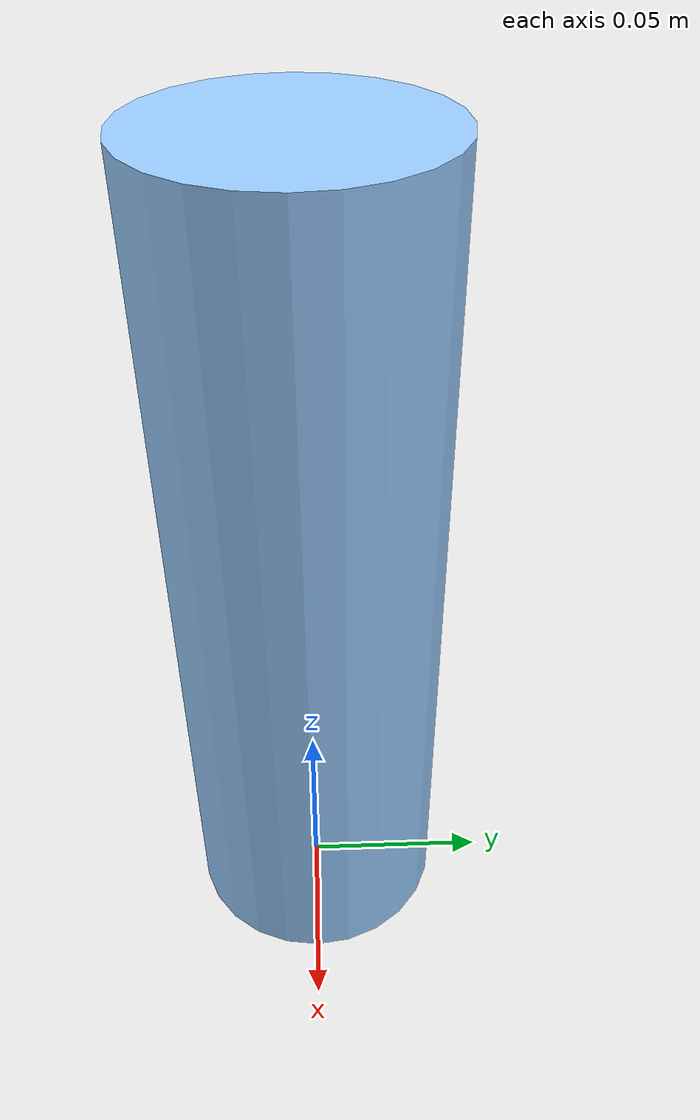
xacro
<?xml version="1.0"?>
<robot name="bottle" xmlns:xacro="http://www.ros.org/wiki/xacro">

  <!-- Parameters -->
  <xacro:property name="bottle_height" value="0.22"/>   <!-- meters -->
  <xacro:property name="bottle_radius" value="0.035"/>  <!-- meters -->
  <xacro:property name="bottle_mass" value="0.5"/>      <!-- kg -->

  <link name="bottle_link">
    <!-- Inertia -->
    <inertial>
      <origin xyz="0 0 ${bottle_height/2.0}" rpy="0 0 0"/>
      <mass value="${bottle_mass}"/>
      <inertia ixx="0.002" ixy="0" ixz="0" iyy="0.002" iyz="0" izz="0.0002"/>
    </inertial>

    <!-- Visual -->
    <visual>
      <origin xyz="0 0 ${bottle_height/2.0}" rpy="0 0 0"/>
      <geometry>
        <cylinder radius="${bottle_radius}" length="${bottle_height}"/>
      </geometry>
      <material name="plastic_clear">
        <color rgba="0.6 0.8 1.0 1.0"/>
      </material>
    </visual>

    <!-- Collision -->
    <collision>
      <origin xyz="0 0 ${bottle_height/2.0}" rpy="0 0 0"/>
      <geometry>
        <cylinder radius="${bottle_radius}" length="${bottle_height}"/>
      </geometry>
    </collision>
  </link>

  <!-- Gazebo physics -->
  <gazebo reference="bottle_link">
    <mu1>0.8</mu1>       <!-- friction coefficient -->
    <mu2>0.8</mu2>
    <kp>100000.0</kp>    <!-- contact stiffness -->
    <kd>10.0</kd>        <!-- contact damping -->
    <minDepth>0.001</minDepth>
  </gazebo>

</robot>
